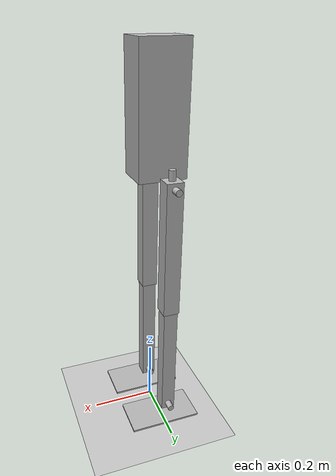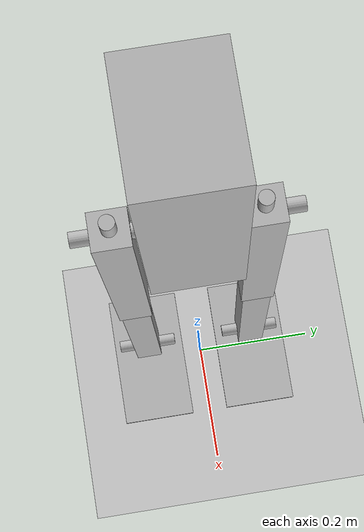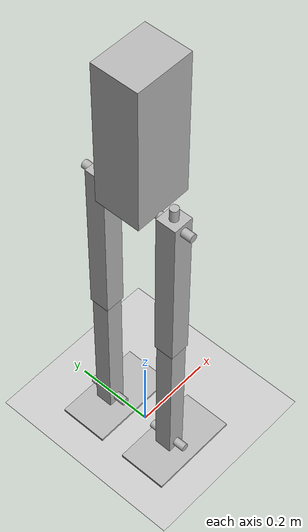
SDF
<?xml version="1.0" ?>
<sdf version="1.4">
<world name="default">

<plugin name="gz_world_manager" filename="libgz_world_manager.so" />

<physics type="ode">
	<gravity>0 0 -9.81</gravity>
	<ode>
		<solver>
			<type>quick</type>
			<iters>90</iters>
			<sor>1.2</sor>
		</solver>
		<constraints>
			<cfm>0.0</cfm>
			<erp>0.2</erp>
			<contact_max_correcting_vel>100.0</contact_max_correcting_vel>
			<contact_surface_layer>0.0</contact_surface_layer>
		</constraints>
	</ode>
	<real_time_update_rate>-1</real_time_update_rate>
	<max_step_size>0.000334</max_step_size>
</physics>

<!-- A ground plane -->
<include>
  <uri>model://ground_plane</uri>
</include>

<!-- A global light source -->
<include>
  <uri>model://sun</uri>
</include>

<include>
  <uri>model://ash_lowerbody</uri>
</include>

</world>
</sdf>

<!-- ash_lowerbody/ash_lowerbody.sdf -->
<sdf version="1.4">
<model name="ash_lowerbody">
	<plugin name="gz_comms_manager" filename="libgz_comms_manager.so" />
	<pose>0 0 0 0 0 0</pose>
	<static>false</static>
	<link name="torso">
		<pose>-.01 0 .997 0 0 0</pose>
		<collision name="collision">
			<geometry>
				<box>
					<size>.143 .114 .367</size>
				</box>
			</geometry>
		</collision>
		<visual name="visual">
			<geometry>
				<box>
					<size>.143 .114 .367</size>
				</box>
			</geometry>
		</visual>
		<inertial>
			<pose>-0.007635463 0.000532902 0.011170676 0 0 0</pose>
			<mass>8.929601491</mass>
			<inertia>
				<ixx>0.160370285</ixx>
				<iyy>0.112425821</iyy>
				<izz>0.106598912</izz>
				<iyz>0.000392533</iyz>
				<ixz>-0.002028322</ixz>
				<ixy>0.000446463</ixy>
			</inertia>
		</inertial>
		<sensor name="imu_sensor" type="imu">
			<always_on>1</always_on>
			<visualize>1</visualize>
			<topic>imu_sensor</topic>
		</sensor>
	</link>

	<link name="l_thigh">
		<pose>-.021 .094 .618 0 0 0</pose>
		<collision name="collision">
			<geometry>
				<box>
					<size>.05 .05 .419</size>
				</box>
			</geometry>
		</collision>
		<visual name="visual">
			<geometry>
				<box>
					<size>.05 .05 .419</size>
				</box>
			</geometry>
		</visual>
		<inertial>
			<pose>-0.011097569 0.018874678 0.032768668 0 0 0</pose>
			<mass>2.298881991</mass>
			<inertia>
				<ixx>0.021768307</ixx>
				<iyy>0.024906869</iyy>
				<izz>0.008717440</izz>
				<iyz>-0.001607937</iyz>
				<ixz>-0.001277535</ixz>
				<ixy>-0.002003306</ixy>
			</inertia>
		</inertial>
	</link>

	<link name="r_thigh">
		<pose>-.021 -.094 .618 0 0 0</pose>
		<collision name="collision">
			<geometry>
				<box>
					<size>.05 .05 .419</size>
				</box>
			</geometry>
		</collision>
		<visual name="visual">
			<geometry>
				<box>
					<size>.05 .05 .419</size>
				</box>
			</geometry>
		</visual>
		<inertial>
			<pose>-0.011097569 -0.018874678 0.032768668 0 0 0</pose>
			<mass>2.298881991</mass>
			<inertia>
				<ixx>0.021768307</ixx>
				<iyy>0.024906869</iyy>
				<izz>0.008717440</izz>
				<iyz>0.001607937</iyz>
				<ixz>-0.001277535</ixz>
				<ixy>0.002003306</ixy>
			</inertia>
		</inertial>
	</link>

	<link name="l_shin">
		<pose>-.021 .094 .239 0 0 0</pose>
		<collision name="collision">
			<geometry>
				<box>
					<size>.044 .044 .42</size>
				</box>
			</geometry>
		</collision>
		<visual name="visual">
			<geometry>
				<box>
					<size>.044 .044 .42</size>
				</box>
			</geometry>
		</visual>
		<inertial>
			<pose>-0.028153381 0.002475222 0.063721119 0 0 0</pose>
			<mass>2.239063829</mass>
			<inertia>
				<ixx>0.021743467</ixx>
				<iyy>0.027022394</iyy>
				<izz>0.010582813</izz>
				<iyz>-0.000035631</iyz>
				<ixz>0.004888637</ixz>
				<ixy>0.000055998</ixy>
			</inertia>
		</inertial>
	</link>

	<link name="r_shin">
		<pose>-.021 -.094 .239 0 0 0</pose>
		<collision name="collision">
			<geometry>
				<box>
					<size>.044 .044 .42</size>
				</box>
			</geometry>
		</collision>
		<visual name="visual">
			<geometry>
				<box>
					<size>.044 .044 .42</size>
				</box>
			</geometry>
		</visual>
		<inertial>
			<pose>-0.028153381 -0.002475222 0.063721119 0 0 0</pose>
			<mass>2.239063829</mass>
			<inertia>
				<ixx>0.021743467</ixx>
				<iyy>0.027022394</iyy>
				<izz>0.010582813</izz>
				<iyz>-0.000035631</iyz>
				<ixz>0.004888637</ixz>
				<ixy>0.000055998</ixy>
			</inertia>
		</inertial>
	</link>

	<link name="l_foot">
		<pose>0 .094 .003 0 0 0</pose>
		<collision name="collision">
			<geometry>
				<box>
					<size>.23 .125 .006</size>
				</box>
			</geometry>
			<!-- From atlas model -->
			<surface>
				<friction>
					<ode>
						<mu>0.9</mu>
						<mu2>0.9</mu2>
						<fdir1>1 0 0</fdir1>
					</ode>
				</friction>
				<contact>
					<ode>
						<max_vel>1.0</max_vel>
						<min_depth>0.003</min_depth>
					</ode>
				</contact>
			</surface>
		</collision>
		<visual name="visual">
			<geometry>
				<box>
					<size>.23 .125 .006</size>
				</box>
			</geometry>
		</visual>
		<inertial>
			<pose>-0.019883971 0.002275946 0.016387485 0 0 0</pose>
			<mass>0.589284444</mass>
			<inertia>
				<ixx>0.000545429</ixx>
				<iyy>0.001825441</iyy>
				<izz>0.002054387</izz>
				<iyz>-0.000001187</iyz>
				<ixz>-0.000179602</ixz>
				<ixy>0.000004512</ixy>
			</inertia>
		</inertial>
	</link>

	<link name="r_foot">
		<pose>0 -.094 .003 0 0 0</pose>
		<collision name="collision">
			<geometry>
				<box>
					<size>.23 .125 .006</size>
				</box>
			</geometry>
			<!-- From atlas model -->
			<surface>
				<friction>
					<ode>
						<mu>0.9</mu>
						<mu2>0.9</mu2>
						<fdir1>1 0 0</fdir1>
					</ode>
				</friction>
				<contact>
					<ode>
						<max_vel>1.0</max_vel>
						<min_depth>0.003</min_depth>
					</ode>
				</contact>
			</surface>
		</collision>
		<visual name="visual">
			<geometry>
				<box>
					<size>.23 .125 .006</size>
				</box>
			</geometry>
		</visual>
		<inertial>
			<pose>-0.019883971 -0.002275946 0.016387485 0 0 0</pose>
			<mass>0.589284444</mass>
			<inertia>
				<ixx>0.000545429</ixx>
				<iyy>0.001825441</iyy>
				<izz>0.002054387</izz>
				<iyz>-0.000001187</iyz>
				<ixz>-0.000179602</ixz>
				<ixy>0.000004512</ixy>
			</inertia>
		</inertial>
	</link>

	<link name="l_hip_yaw_trunnion">
		<pose>-.021 .094 .808 0 0 0</pose>
		<!-- Axis = "z", -->
		<collision name="collision">
			<geometry>
				<cylinder>
					<radius>0.01</radius>
					<length>0.1</length>
				</cylinder>
			</geometry>
		</collision>
		<visual name="visual">
			<geometry>
				<cylinder>
					<radius>0.01</radius>
					<length>0.1</length>
				</cylinder>
			</geometry>
		</visual>
		<inertial>
			<mass>0.1</mass>
			<inertia>
				<ixx>8.5833333333333e-05</ixx>
				<iyy>8.5833333333333e-05</iyy>
				<izz>5e-06</izz>
				<ixy>0</ixy>
				<ixz>0</ixz>
				<iyz>0</iyz>
			</inertia>
		</inertial>
	</link>

	<link name="r_hip_yaw_trunnion">
		<pose>-.021 -.094 .808 0 0 0</pose>
		<!-- Axis = "z", -->
		<collision name="collision">
			<geometry>
				<cylinder>
					<radius>0.01</radius>
					<length>0.1</length>
				</cylinder>
			</geometry>
		</collision>
		<visual name="visual">
			<geometry>
				<cylinder>
					<radius>0.01</radius>
					<length>0.1</length>
				</cylinder>
			</geometry>
		</visual>
		<inertial>
			<mass>0.1</mass>
			<inertia>
				<ixx>8.5833333333333e-05</ixx>
				<iyy>8.5833333333333e-05</iyy>
				<izz>5e-06</izz>
				<ixy>0</ixy>
				<ixz>0</ixz>
				<iyz>0</iyz>
			</inertia>
		</inertial>
	</link>

	<link name="l_hip_pitch_trunnion">
		<pose>-.021 .094 .808 0 0 0</pose>
		<!-- Axis = "y", -->
		<collision name="collision">
			<pose>0 0 0 1.57079632679 0 0</pose>
			<geometry>
				<cylinder>
					<radius>0.01</radius>
					<length>0.1</length>
				</cylinder>
			</geometry>
		</collision>
		<visual name="visual">
			<pose>0 0 0 1.57079632679 0 0</pose>
			<geometry>
				<cylinder>
					<radius>0.01</radius>
					<length>0.1</length>
				</cylinder>
			</geometry>
		</visual>
		<inertial>
			<mass>0.1</mass>
			<inertia>
				<ixx>8.5833333333333e-05</ixx>
				<iyy>5e-06</iyy>
				<izz>8.5833333333333e-05</izz>
				<ixy>0</ixy>
				<ixz>0</ixz>
				<iyz>0</iyz>
			</inertia>
		</inertial>
	</link>

	<link name="r_hip_pitch_trunnion">
		<pose>-.021 -.094 .808 0 0 0</pose>
		<!-- Axis = "y", -->
		<collision name="collision">
			<pose>0 0 0 1.57079632679 0 0</pose>
			<geometry>
				<cylinder>
					<radius>0.01</radius>
					<length>0.1</length>
				</cylinder>
			</geometry>
		</collision>
		<visual name="visual">
			<pose>0 0 0 1.57079632679 0 0</pose>
			<geometry>
				<cylinder>
					<radius>0.01</radius>
					<length>0.1</length>
				</cylinder>
			</geometry>
		</visual>
		<inertial>
			<mass>0.1</mass>
			<inertia>
				<ixx>8.5833333333333e-05</ixx>
				<iyy>5e-06</iyy>
				<izz>8.5833333333333e-05</izz>
				<ixy>0</ixy>
				<ixz>0</ixz>
				<iyz>0</iyz>
			</inertia>
		</inertial>
	</link>

	<link name="l_ankle_pitch_trunnion">
		<pose>-.021 .094 .049 0 0 0</pose>
		<!-- Axis = "y", -->
		<collision name="collision">
			<pose>0 0 0 1.57079632679 0 0</pose>
			<geometry>
				<cylinder>
					<radius>0.01</radius>
					<length>0.1</length>
				</cylinder>
			</geometry>
		</collision>
		<visual name="visual">
			<pose>0 0 0 1.57079632679 0 0</pose>
			<geometry>
				<cylinder>
					<radius>0.01</radius>
					<length>0.1</length>
				</cylinder>
			</geometry>
		</visual>
		<inertial>
			<mass>0.1</mass>
			<inertia>
				<ixx>8.5833333333333e-05</ixx>
				<iyy>5e-06</iyy>
				<izz>8.5833333333333e-05</izz>
				<ixy>0</ixy>
				<ixz>0</ixz>
				<iyz>0</iyz>
			</inertia>
		</inertial>
	</link>

	<link name="r_ankle_pitch_trunnion">
		<pose>-.021 -.094 .049 0 0 0</pose>
		<!-- Axis = "y", -->
		<collision name="collision">
			<pose>0 0 0 1.57079632679 0 0</pose>
			<geometry>
				<cylinder>
					<radius>0.01</radius>
					<length>0.1</length>
				</cylinder>
			</geometry>
		</collision>
		<visual name="visual">
			<pose>0 0 0 1.57079632679 0 0</pose>
			<geometry>
				<cylinder>
					<radius>0.01</radius>
					<length>0.1</length>
				</cylinder>
			</geometry>
		</visual>
		<inertial>
			<mass>0.1</mass>
			<inertia>
				<ixx>8.5833333333333e-05</ixx>
				<iyy>5e-06</iyy>
				<izz>8.5833333333333e-05</izz>
				<ixy>0</ixy>
				<ixz>0</ixz>
				<iyz>0</iyz>
			</inertia>
		</inertial>
	</link>

	<joint name="l_hip_yaw" type="revolute">
		<parent>
			<link_name>torso</link_name>
		</parent>
		<child>
			<link_name>l_hip_yaw_trunnion</link_name>
		</child>
		<axis>
			<xyz>0 0 1</xyz>
			<limit>
				<lower>-0.436332313</lower>
				<upper>0.1745329252</upper>
				<effort>300</effort>
				<velocity>12</velocity>
			</limit>
			<dynamics>
				<damping>1.0</damping>
				<friction>0</friction>
			</dynamics>
		</axis>
		<physics>
			<ode>
				<cfm_damping>1</cfm_damping>
			</ode>
		</physics>
	</joint>

	<joint name="r_hip_yaw" type="revolute">
		<parent>
			<link_name>torso</link_name>
		</parent>
		<child>
			<link_name>r_hip_yaw_trunnion</link_name>
		</child>
		<axis>
			<xyz>0 0 1</xyz>
			<limit>
				<lower>-0.436332313</lower>
				<upper>0.1745329252</upper>
				<effort>300</effort>
				<velocity>12</velocity>
			</limit>
			<dynamics>
				<damping>1.0</damping>
				<friction>0</friction>
			</dynamics>
		</axis>
		<physics>
			<ode>
				<cfm_damping>1</cfm_damping>
			</ode>
		</physics>
	</joint>

	<joint name="l_hip_roll" type="revolute">
		<parent>
			<link_name>l_hip_yaw_trunnion</link_name>
		</parent>
		<child>
			<link_name>l_hip_pitch_trunnion</link_name>
		</child>
		<axis>
			<xyz>1 0 0</xyz>
			<limit>
				<lower>-0.401425728</lower>
				<upper>0.401425728</upper>
				<effort>300</effort>
				<velocity>12</velocity>
			</limit>
			<dynamics>
				<damping>1.0</damping>
				<friction>0</friction>
			</dynamics>
		</axis>
		<physics>
			<ode>
				<cfm_damping>1</cfm_damping>
			</ode>
		</physics>
	</joint>

	<joint name="r_hip_roll" type="revolute">
		<parent>
			<link_name>r_hip_yaw_trunnion</link_name>
		</parent>
		<child>
			<link_name>r_hip_pitch_trunnion</link_name>
		</child>
		<axis>
			<xyz>1 0 0</xyz>
			<limit>
				<lower>-0.401425728</lower>
				<upper>0.401425728</upper>
				<effort>300</effort>
				<velocity>12</velocity>
			</limit>
			<dynamics>
				<damping>1.0</damping>
				<friction>0</friction>
			</dynamics>
		</axis>
		<physics>
			<ode>
				<cfm_damping>1</cfm_damping>
			</ode>
		</physics>
	</joint>

	<joint name="l_hip_pitch" type="revolute">
		<!-- thigh pose: -.021 .094 .618 0 0 0 -->
		<!-- desired pose: -.021 .094 .808 0 0 0 -->
		<pose>0 0 .19 0 0 0</pose>
		<parent>
			<link_name>l_hip_pitch_trunnion</link_name>
		</parent>
		<child>
			<link_name>l_thigh</link_name>
		</child>
		<axis>
			<xyz>0 1 0</xyz>
			<limit>
				<lower>-0.7853981634</lower>
				<upper>0.7853981634</upper>
				<effort>300</effort>
				<velocity>12</velocity>
			</limit>
			<dynamics>
				<damping>1.0</damping>
				<friction>0</friction>
			</dynamics>
		</axis>
		<physics>
			<ode>
				<cfm_damping>1</cfm_damping>
			</ode>
		</physics>
	</joint>

	<joint name="r_hip_pitch" type="revolute">
		<!-- thigh pose: -.021 -.094 .618 0 0 0 -->
		<!-- desired pose: -.021 -.094 .808 0 0 0 -->
		<pose>0 0 .19 0 0 0</pose>
		<parent>
			<link_name>r_hip_pitch_trunnion</link_name>
		</parent>
		<child>
			<link_name>r_thigh</link_name>
		</child>
		<axis>
			<xyz>0 1 0</xyz>
			<limit>
				<lower>-0.7853981634</lower>
				<upper>0.7853981634</upper>
				<effort>300</effort>
				<velocity>12</velocity>
			</limit>
			<dynamics>
				<damping>1.0</damping>
				<friction>0</friction>
			</dynamics>
		</axis>
		<physics>
			<ode>
				<cfm_damping>1</cfm_damping>
			</ode>
		</physics>
	</joint>

	<joint name="l_knee_pitch" type="revolute">
		<!-- shin pose: -.021 .094 .239 0 0 0 -->
		<!-- desired pose: -.021 .094 .429 0 0 0 -->
		<pose>0 0 .19 0 0 0</pose>
		<parent>
			<link_name>l_thigh</link_name>
		</parent>
		<child>
			<link_name>l_shin</link_name>
		</child>
		<axis>
			<xyz>0 1 0</xyz>
			<limit>
				<lower>0</lower>
				<upper>1.5707963268</upper>
				<effort>300</effort>
				<velocity>12</velocity>
			</limit>
			<dynamics>
				<damping>1.0</damping>
				<friction>0</friction>
			</dynamics>
		</axis>
		<physics>
			<ode>
				<cfm_damping>1</cfm_damping>
			</ode>
		</physics>
	</joint>

	<joint name="r_knee_pitch" type="revolute">
		<!-- shin pose: -.021 -.094 .239 0 0 0 -->
		<!-- desired pose: -.021 -.094 .429 0 0 0 -->
		<pose>0 0 .19 0 0 0</pose>
		<parent>
			<link_name>r_thigh</link_name>
		</parent>
		<child>
			<link_name>r_shin</link_name>
		</child>
		<axis>
			<xyz>0 1 0</xyz>
			<limit>
				<lower>0</lower>
				<upper>1.5707963268</upper>
				<effort>300</effort>
				<velocity>12</velocity>
			</limit>
			<dynamics>
				<damping>1.0</damping>
				<friction>0</friction>
			</dynamics>
		</axis>
		<physics>
			<ode>
				<cfm_damping>1</cfm_damping>
			</ode>
		</physics>
	</joint>

	<joint name="l_ankle_pitch" type="revolute">
		<parent>
			<link_name>l_shin</link_name>
		</parent>
		<child>
			<link_name>l_ankle_pitch_trunnion</link_name>
		</child>
		<axis>
			<xyz>0 1 0</xyz>
			<limit>
				<lower>-0.6981317008</lower>
				<upper>0.872664626</upper>
				<effort>300</effort>
				<velocity>12</velocity>
			</limit>
			<dynamics>
				<damping>1.0</damping>
				<friction>0</friction>
			</dynamics>
		</axis>
		<physics>
			<ode>
				<cfm_damping>1</cfm_damping>
			</ode>
		</physics>
	</joint>

	<joint name="r_ankle_pitch" type="revolute">
		<parent>
			<link_name>r_shin</link_name>
		</parent>
		<child>
			<link_name>r_ankle_pitch_trunnion</link_name>
		</child>
		<axis>
			<xyz>0 1 0</xyz>
			<limit>
				<lower>-0.6981317008</lower>
				<upper>0.872664626</upper>
				<effort>300</effort>
				<velocity>12</velocity>
			</limit>
			<dynamics>
				<damping>1.0</damping>
				<friction>0</friction>
			</dynamics>
		</axis>
		<physics>
			<ode>
				<cfm_damping>1</cfm_damping>
			</ode>
		</physics>
	</joint>

	<joint name="l_ankle_roll" type="revolute">
		<!-- ankle pose: 0 .094 .003 0 0 0 -->
		<!-- desired pose: -.021 .094 .049 0 0 0 -->
		<pose>-.021 0 .046 0 0 0</pose>
		<parent>
			<link_name>l_ankle_pitch_trunnion</link_name>
		</parent>
		<child>
			<link_name>l_foot</link_name>
		</child>
		<axis>
			<xyz>1 0 0</xyz>
			<limit>
				<lower>-0.3490658504</lower>
				<upper>0.3490658504</upper>
				<effort>300</effort>
				<velocity>12</velocity>
			</limit>
			<dynamics>
				<damping>1.0</damping>
				<friction>0</friction>
			</dynamics>
		</axis>
		<physics>
			<ode>
				<cfm_damping>1</cfm_damping>
				<provide_feedback>1</provide_feedback>
			</ode>
		</physics>
	</joint>

	<joint name="r_ankle_roll" type="revolute">
		<!-- ankle pose: 0 -.094 .003 0 0 0 -->
		<!-- desired pose: -.021 -.094 .049 0 0 0 -->
		<pose>-.021 0 .046 0 0 0</pose>
		<parent>
			<link_name>r_ankle_pitch_trunnion</link_name>
		</parent>
		<child>
			<link_name>r_foot</link_name>
		</child>
		<axis>
			<xyz>1 0 0</xyz>
			<limit>
				<lower>-0.3490658504</lower>
				<upper>0.3490658504</upper>
				<effort>300</effort>
				<velocity>12</velocity>
			</limit>
			<dynamics>
				<damping>1.0</damping>
				<friction>0</friction>
			</dynamics>
		</axis>
		<physics>
			<ode>
				<cfm_damping>1</cfm_damping>
				<provide_feedback>1</provide_feedback>
			</ode>
		</physics>
	</joint>
</model>
</sdf>
